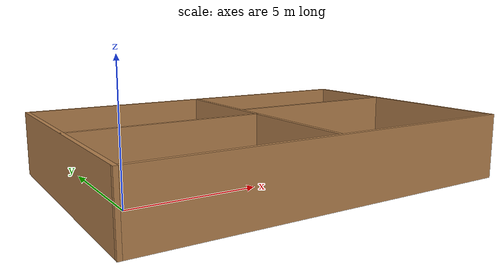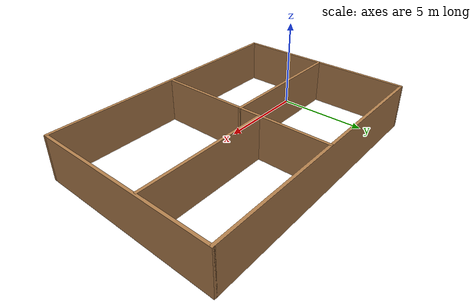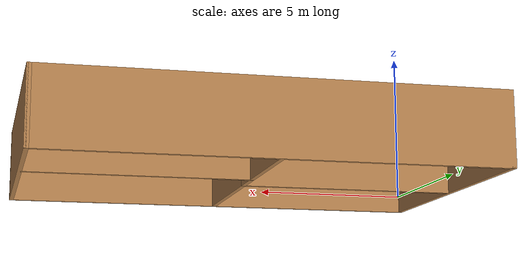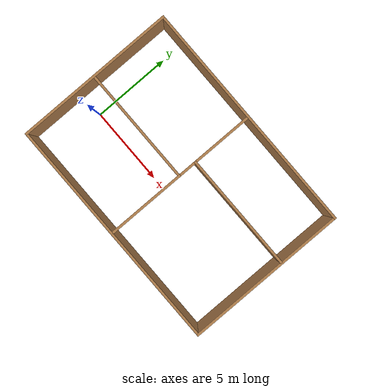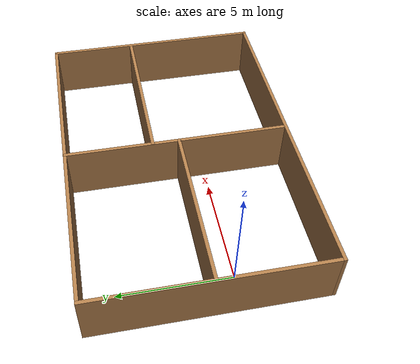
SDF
<?xml version='1.0'?>
<sdf version='1.6'>
  <model name='casita.world'>
    <pose frame=''>5.95742 1.28711 0 0 -0 0</pose>
    <link name='Wall_1'>
      <collision name='Wall_1_Collision'>
        <geometry>
          <box>
            <size>10.25 0.15 2.5</size>
          </box>
        </geometry>
        <pose frame=''>0 0 1.25 0 -0 0</pose>
      </collision>
      <visual name='Wall_1_Visual'>
        <pose frame=''>0 0 1.25 0 -0 0</pose>
        <geometry>
          <box>
            <size>10.25 0.15 2.5</size>
          </box>
        </geometry>
        <material>
          <script>
            <uri>file://media/materials/scripts/gazebo.material</uri>
            <name>Gazebo/Wood</name>
          </script>
          <ambient>1 1 1 1</ambient>
        </material>
        <meta>
          <layer>0</layer>
        </meta>
      </visual>
      <pose frame=''>-7.425 -0 0 0 -0 1.5708</pose>
    </link>
    <link name='Wall_11'>
      <collision name='Wall_11_Collision'>
        <geometry>
          <box>
            <size>5 0.15 2.5</size>
          </box>
        </geometry>
        <pose frame=''>0 0 1.25 0 -0 0</pose>
      </collision>
      <visual name='Wall_11_Visual'>
        <pose frame=''>0 0 1.25 0 -0 0</pose>
        <geometry>
          <box>
            <size>5 0.15 2.5</size>
          </box>
        </geometry>
        <material>
          <script>
            <uri>file://media/materials/scripts/gazebo.material</uri>
            <name>Gazebo/Wood</name>
          </script>
          <ambient>1 1 1 1</ambient>
        </material>
        <meta>
          <layer>0</layer>
        </meta>
      </visual>
      <pose frame=''>-0.04441 -2.48879 0 0 -0 -1.5708</pose>
    </link>
    <link name='Wall_18'>
      <collision name='Wall_18_Collision'>
        <geometry>
          <box>
            <size>7.5 0.15 2.5</size>
          </box>
        </geometry>
        <pose frame=''>0 0 1.25 0 -0 0</pose>
      </collision>
      <visual name='Wall_18_Visual'>
        <pose frame=''>0 0 1.25 0 -0 0</pose>
        <geometry>
          <box>
            <size>7.5 0.15 2.5</size>
          </box>
        </geometry>
        <material>
          <script>
            <uri>file://media/materials/scripts/gazebo.material</uri>
            <name>Gazebo/Wood</name>
          </script>
          <ambient>1 1 1 1</ambient>
        </material>
        <meta>
          <layer>0</layer>
        </meta>
      </visual>
      <pose frame=''>3.65248 1.13406 0 0 -0 0</pose>
    </link>
    <link name='Wall_2'>
      <collision name='Wall_2_Collision'>
        <geometry>
          <box>
            <size>15 0.15 2.5</size>
          </box>
        </geometry>
        <pose frame=''>0 0 1.25 0 -0 0</pose>
      </collision>
      <visual name='Wall_2_Visual'>
        <pose frame=''>0 0 1.25 0 -0 0</pose>
        <geometry>
          <box>
            <size>15 0.15 2.5</size>
          </box>
        </geometry>
        <material>
          <script>
            <uri>file://media/materials/scripts/gazebo.material</uri>
            <name>Gazebo/Wood</name>
          </script>
          <ambient>1 1 1 1</ambient>
        </material>
        <meta>
          <layer>0</layer>
        </meta>
      </visual>
      <pose frame=''>-0 5.05 0 0 -0 0</pose>
    </link>
    <link name='Wall_3'>
      <collision name='Wall_3_Collision'>
        <geometry>
          <box>
            <size>10.25 0.15 2.5</size>
          </box>
        </geometry>
        <pose frame=''>0 0 1.25 0 -0 0</pose>
      </collision>
      <visual name='Wall_3_Visual'>
        <pose frame=''>0 0 1.25 0 -0 0</pose>
        <geometry>
          <box>
            <size>10.25 0.15 2.5</size>
          </box>
        </geometry>
        <material>
          <script>
            <uri>file://media/materials/scripts/gazebo.material</uri>
            <name>Gazebo/Wood</name>
          </script>
          <ambient>1 1 1 1</ambient>
        </material>
        <meta>
          <layer>0</layer>
        </meta>
      </visual>
      <pose frame=''>7.425 -0 0 0 -0 -1.5708</pose>
    </link>
    <link name='Wall_4'>
      <collision name='Wall_4_Collision'>
        <geometry>
          <box>
            <size>15 0.15 2.5</size>
          </box>
        </geometry>
        <pose frame=''>0 0 1.25 0 -0 0</pose>
      </collision>
      <visual name='Wall_4_Visual'>
        <pose frame=''>0 0 1.25 0 -0 0</pose>
        <geometry>
          <box>
            <size>15 0.15 2.5</size>
          </box>
        </geometry>
        <material>
          <script>
            <uri>file://media/materials/scripts/gazebo.material</uri>
            <name>Gazebo/Wood</name>
          </script>
          <ambient>1 1 1 1</ambient>
        </material>
        <meta>
          <layer>0</layer>
        </meta>
      </visual>
      <pose frame=''>-0 -5.05 0 0 -0 3.14159</pose>
    </link>
    <link name='Wall_6'>
      <collision name='Wall_6_Collision'>
        <geometry>
          <box>
            <size>7.5 0.15 2.5</size>
          </box>
        </geometry>
        <pose frame=''>0 0 1.25 0 -0 0</pose>
      </collision>
      <visual name='Wall_6_Visual'>
        <pose frame=''>0 0 1.25 0 -0 0</pose>
        <geometry>
          <box>
            <size>7.5 0.15 2.5</size>
          </box>
        </geometry>
        <material>
          <script>
            <uri>file://media/materials/scripts/gazebo.material</uri>
            <name>Gazebo/Wood</name>
          </script>
          <ambient>1 1 1 1</ambient>
        </material>
        <meta>
          <layer>0</layer>
        </meta>
      </visual>
      <pose frame=''>-3.71941 -0.063793 0 0 -0 0</pose>
    </link>
    <link name='Wall_7'>
      <collision name='Wall_7_Collision'>
        <geometry>
          <box>
            <size>5.25 0.15 2.5</size>
          </box>
        </geometry>
        <pose frame=''>0 0 1.25 0 -0 0</pose>
      </collision>
      <visual name='Wall_7_Visual'>
        <pose frame=''>0 0 1.25 0 -0 0</pose>
        <geometry>
          <box>
            <size>5.25 0.15 2.5</size>
          </box>
        </geometry>
        <material>
          <script>
            <uri>file://media/materials/scripts/gazebo.material</uri>
            <name>Gazebo/Wood</name>
          </script>
          <ambient>1 1 1 1</ambient>
        </material>
        <meta>
          <layer>0</layer>
        </meta>
      </visual>
      <pose frame=''>-0.04441 2.48621 0 0 -0 1.5708</pose>
    </link>
    <static>1</static>
  </model>
</sdf>
